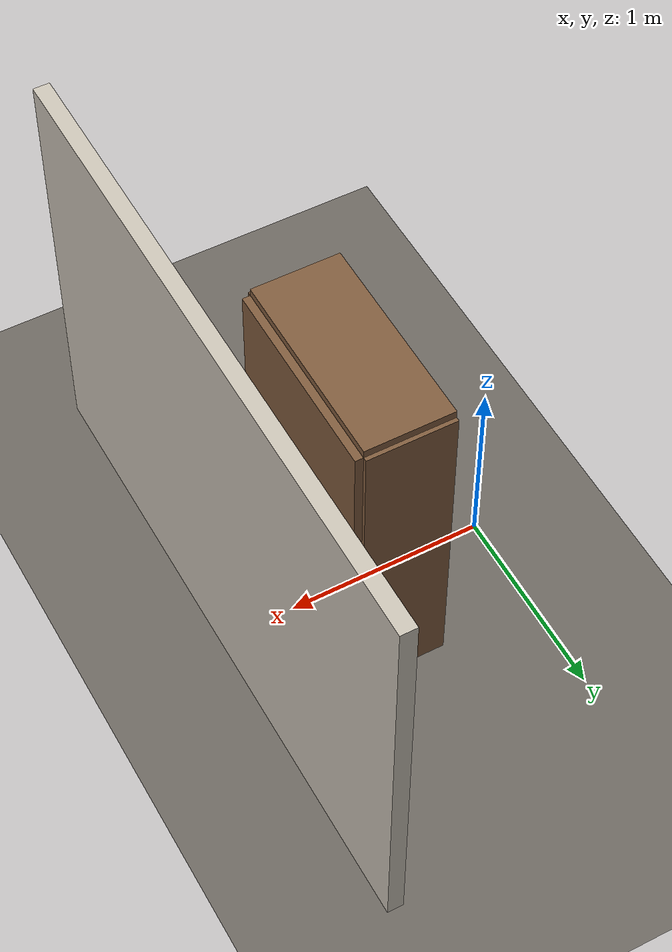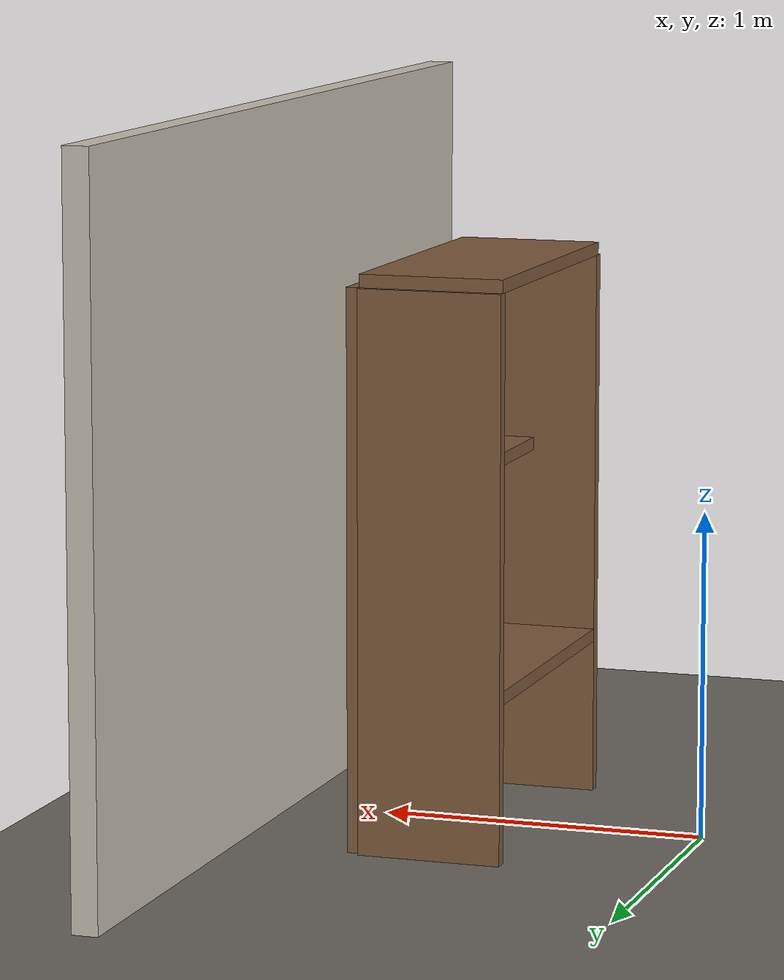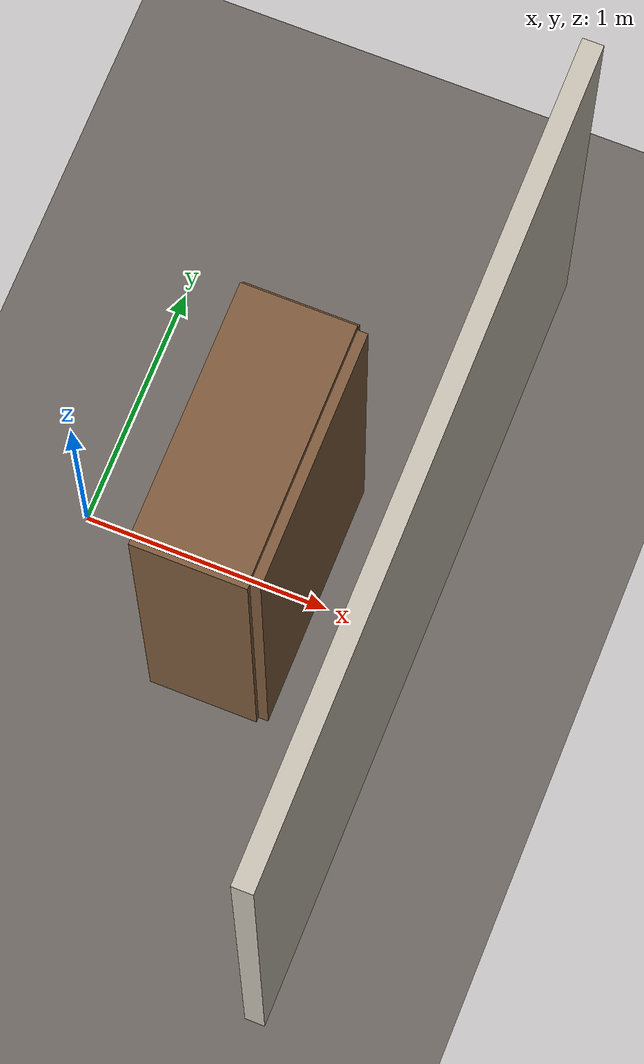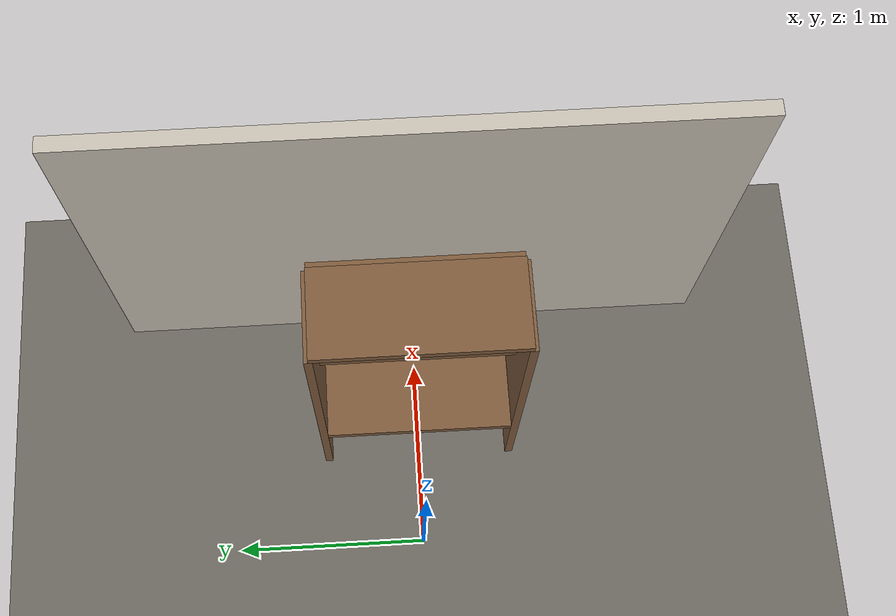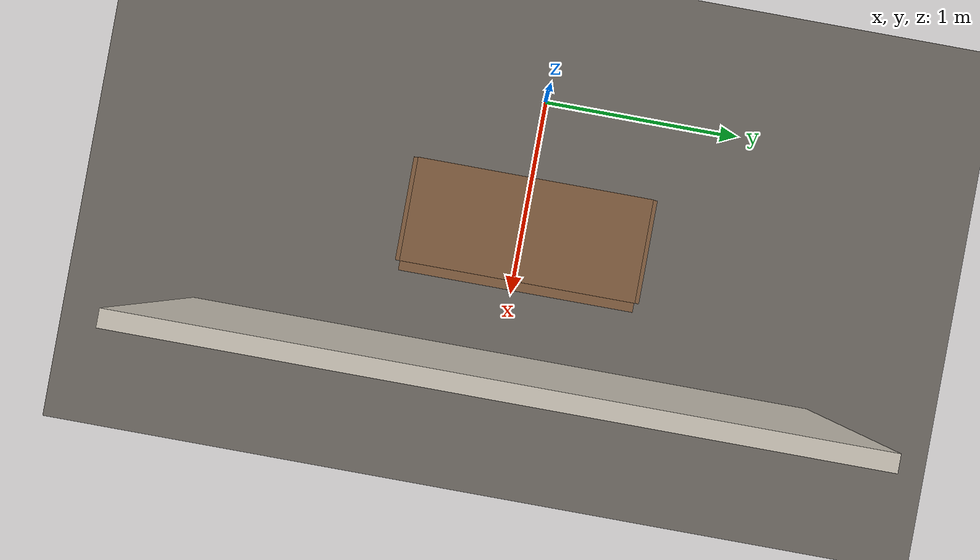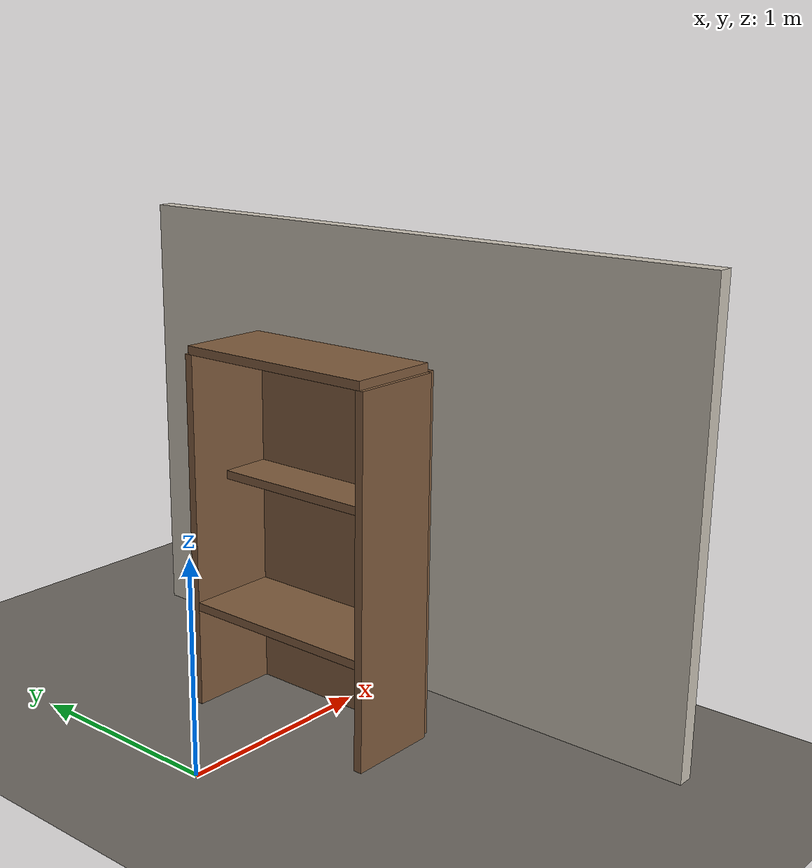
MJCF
<mujoco model="real_env_2_shelfbay">
  <compiler angle="radian" autolimits="true" boundmass="0" balanceinertia="true"/>
  <option impratio="10" gravity="0 0 -9.8" integrator="implicitfast" cone="elliptic" jacobian="sparse" noslip_iterations="4">
    <flag multiccd="enable" contact="enable" warmstart="enable"/>
  </option>
  <size njmax="8000" nconmax="8000"/>
  <visual><global offwidth="1280" offheight="720"/><map znear="0.001"/>
    <headlight ambient="0.42 0.42 0.42" diffuse="0.55 0.55 0.55"/></visual>
  <asset>
    <texture name="woodtex" type="2d" builtin="flat" rgb1="0.50 0.36 0.24" width="32" height="32"/>
    <material name="wood" texture="woodtex" reflectance="0.05"/>
    <texture name="wood2tex" type="2d" builtin="flat" rgb1="0.44 0.32 0.22" width="32" height="32"/>
    <material name="wood2" texture="wood2tex" reflectance="0.05"/>
    <texture name="floortex" type="2d" builtin="checker" rgb1="0.46 0.44 0.41" rgb2="0.39 0.37 0.35" width="300" height="300"/>
    <material name="floormat" texture="floortex" texrepeat="10 10" reflectance="0.05"/>
  </asset>
  <default>
    <default class="furniture">
      <geom contype="8" conaffinity="15" group="0" friction="0.9 0.9 0.001"
            solref="0.02 1" solimp="0.998 0.998 0.001" density="700" material="wood"/>
    </default>
    <default class="furniture2">
      <geom contype="8" conaffinity="15" group="0" friction="0.9 0.9 0.001"
            solref="0.02 1" solimp="0.998 0.998 0.001" density="700" material="wood2"/>
    </default>
  </default>
  <worldbody>
    <light pos="0.3 0.5 2.6" dir="0 0 -1" diffuse="0.65 0.65 0.65"/>
    <light pos="-0.8 -0.8 2.2" dir="0.3 0.3 -1" diffuse="0.3 0.3 0.3"/>
    <geom name="floor" type="plane" size="5 5 0.1" pos="0 0 0" material="floormat" contype="8" conaffinity="15"/>
    <geom name="bay_board_lo" type="box" pos="0.7 0 0.5" size="0.22 0.48 0.02" class="furniture"/>
    <geom name="bay_board_hi" type="box" pos="0.8 0 1.1" size="0.12 0.48 0.02" class="furniture"/>
    <geom name="bay_side_l" type="box" pos="0.7 0.5 0.85" size="0.22 0.02 0.85" class="furniture"/>
    <geom name="bay_side_r" type="box" pos="0.7 -0.5 0.85" size="0.22 0.02 0.85" class="furniture"/>
    <geom name="bay_back" type="box" pos="0.94 0 0.85" size="0.02 0.5 0.85" class="furniture"/>
    <geom name="bay_top" type="box" pos="0.7 0 1.72" size="0.22 0.5 0.02" class="furniture"/>
    <geom name="wall_back" type="box" pos="1.35 0 1.1" size="0.04 1.6 1.1" contype="8" conaffinity="15" rgba="0.79 0.76 0.71 1"/>
    <site name="target_spot" pos="0.74 0.0 0.52" size="0.01" rgba="0 0 0 0"/>
  </worldbody>
</mujoco>
